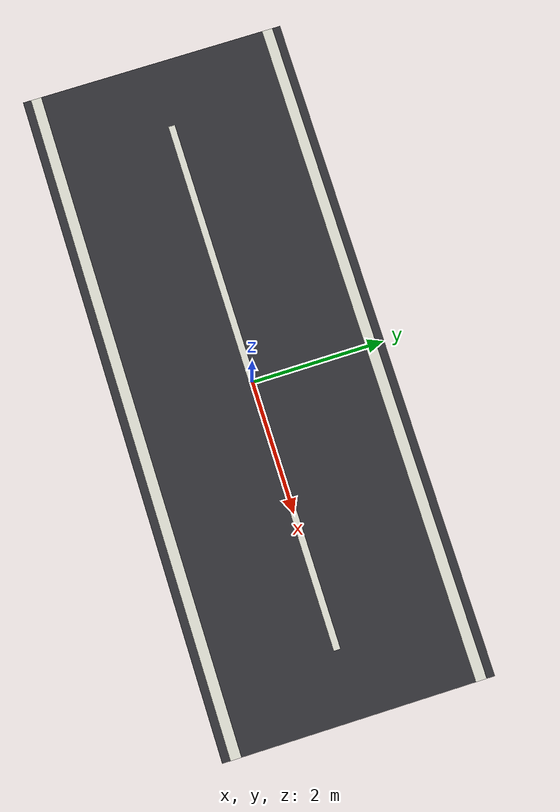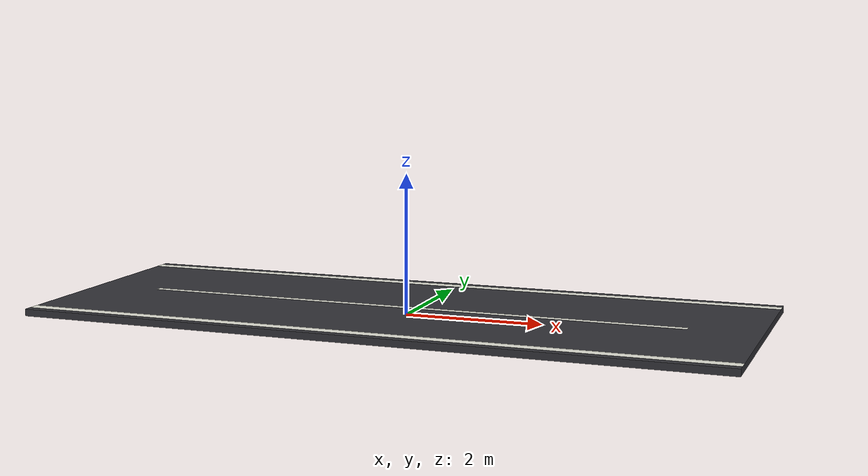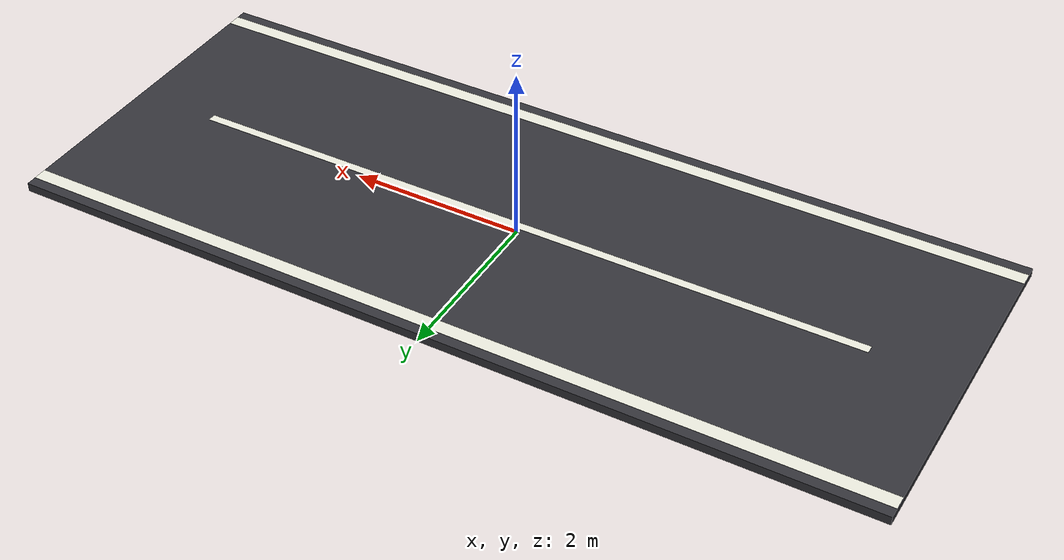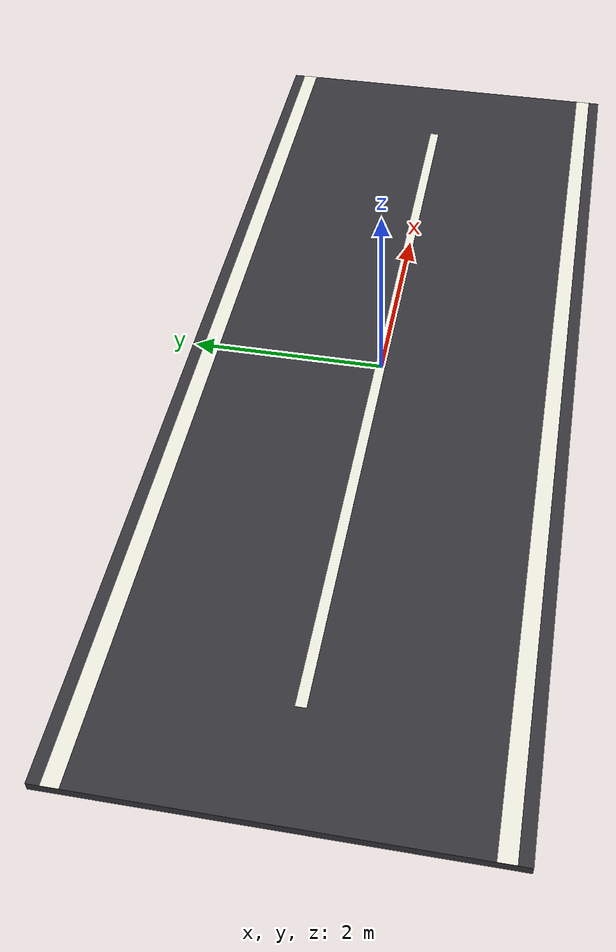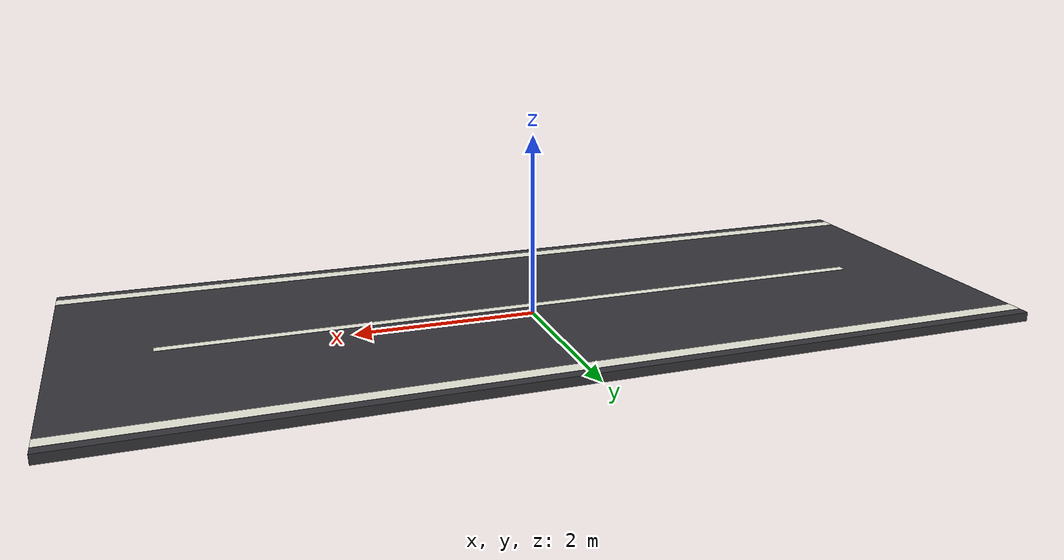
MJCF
<mujoco>
  <!-- Road section -->
  <asset>
    <material name="asphalt" rgba="0.2 0.2 0.22 1"/>
    <material name="road_line" rgba="0.9 0.9 0.85 1"/>
  </asset>

  <worldbody>
    <body name="road_section">
      <!-- Main road surface -->
      <geom name="road_surface" type="box" size="5 2 0.05" pos="0 0 0.05" material="asphalt" friction="1.0 0.5 0.1"/>

      <!-- Center line -->
      <geom name="center_line" type="box" size="4 0.05 0.001" pos="0 0 0.101" material="road_line"/>

      <!-- Edge lines -->
      <geom name="edge_left" type="box" size="5 0.08 0.001" pos="0 1.8 0.101" material="road_line"/>
      <geom name="edge_right" type="box" size="5 0.08 0.001" pos="0 -1.8 0.101" material="road_line"/>
    </body>
  </worldbody>
</mujoco>
